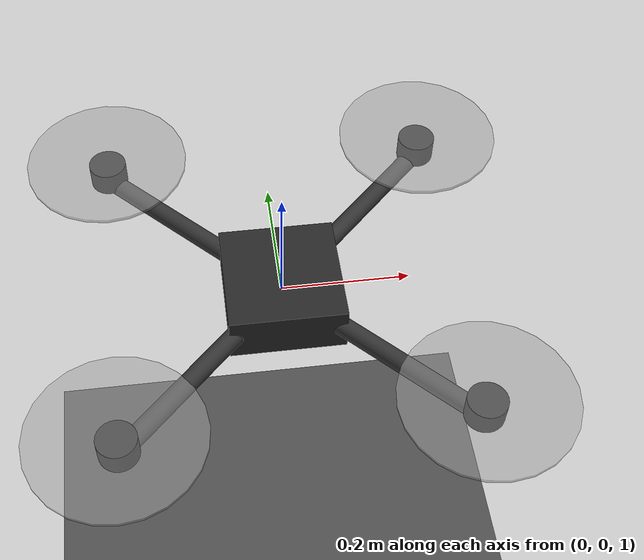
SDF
<?xml version="1.0"?>
<sdf version="1.9">
  <world name="quad_world">
    <plugin filename="gz-sim-physics-system" name="gz::sim::systems::Physics"/>
    <plugin filename="gz-sim-user-commands-system" name="gz::sim::systems::UserCommands"/>
    <plugin filename="gz-sim-scene-broadcaster-system" name="gz::sim::systems::SceneBroadcaster"/>
    <plugin filename="gz-sim-sensors-system" name="gz::sim::systems::Sensors">
      <render_engine>ogre2</render_engine>
    </plugin>

    <light type="directional" name="sun">
      <cast_shadows>true</cast_shadows>
      <pose>0 0 10 0 0 0</pose>
      <diffuse>0.8 0.8 0.8 1</diffuse>
      <direction>-0.5 0.1 -0.9</direction>
    </light>

    <model name="ground_plane">
      <static>true</static>
      <link name="link">
        <collision name="collision">
          <geometry><plane><normal>0 0 1</normal><size>50 50</size></plane></geometry>
        </collision>
        <visual name="visual">
          <geometry><plane><normal>0 0 1</normal><size>50 50</size></plane></geometry>
          <material><ambient>0.3 0.3 0.3 1</ambient></material>
        </visual>
      </link>
    </model>

    <model name="quadrotor">
      <pose>0 0 1 0 0 0</pose>
      <link name="base_link">
        <gravity>false</gravity>  <!-- no flight controller, so we cancel gravity -->
        <inertial>
          <mass>1.5</mass>
          <inertia><ixx>0.03</ixx><iyy>0.03</iyy><izz>0.06</izz>
                    <ixy>0</ixy><ixz>0</ixz><iyz>0</iyz></inertia>
        </inertial>

        <!-- central hub -->
        <visual name="hub_visual">
          <geometry><box><size>0.18 0.18 0.08</size></box></geometry>
          <material><ambient>0.15 0.15 0.15 1</ambient><diffuse>0.15 0.15 0.15 1</diffuse></material>
        </visual>

        <!-- 4 arms, X configuration -->
        <visual name="arm_fl">
          <pose>0.15 0.15 0 0 1.5708 0.7854</pose>
          <geometry><cylinder><radius>0.015</radius><length>0.32</length></cylinder></geometry>
          <material><ambient>0.2 0.2 0.2 1</ambient><diffuse>0.2 0.2 0.2 1</diffuse></material>
        </visual>
        <visual name="arm_fr">
          <pose>0.15 -0.15 0 0 1.5708 -0.7854</pose>
          <geometry><cylinder><radius>0.015</radius><length>0.32</length></cylinder></geometry>
          <material><ambient>0.2 0.2 0.2 1</ambient><diffuse>0.2 0.2 0.2 1</diffuse></material>
        </visual>
        <visual name="arm_bl">
          <pose>-0.15 0.15 0 0 1.5708 -0.7854</pose>
          <geometry><cylinder><radius>0.015</radius><length>0.32</length></cylinder></geometry>
          <material><ambient>0.2 0.2 0.2 1</ambient><diffuse>0.2 0.2 0.2 1</diffuse></material>
        </visual>
        <visual name="arm_br">
          <pose>-0.15 -0.15 0 0 1.5708 0.7854</pose>
          <geometry><cylinder><radius>0.015</radius><length>0.32</length></cylinder></geometry>
          <material><ambient>0.2 0.2 0.2 1</ambient><diffuse>0.2 0.2 0.2 1</diffuse></material>
        </visual>

        <!-- 4 rotor motors (small dark cylinders at arm tips) -->
        <visual name="motor_fl">
          <pose>0.26 0.26 0.02 0 0 0</pose>
          <geometry><cylinder><radius>0.03</radius><length>0.04</length></cylinder></geometry>
          <material><ambient>0.05 0.05 0.05 1</ambient><diffuse>0.05 0.05 0.05 1</diffuse></material>
        </visual>
        <visual name="motor_fr">
          <pose>0.26 -0.26 0.02 0 0 0</pose>
          <geometry><cylinder><radius>0.03</radius><length>0.04</length></cylinder></geometry>
          <material><ambient>0.05 0.05 0.05 1</ambient><diffuse>0.05 0.05 0.05 1</diffuse></material>
        </visual>
        <visual name="motor_bl">
          <pose>-0.26 0.26 0.02 0 0 0</pose>
          <geometry><cylinder><radius>0.03</radius><length>0.04</length></cylinder></geometry>
          <material><ambient>0.05 0.05 0.05 1</ambient><diffuse>0.05 0.05 0.05 1</diffuse></material>
        </visual>
        <visual name="motor_br">
          <pose>-0.26 -0.26 0.02 0 0 0</pose>
          <geometry><cylinder><radius>0.03</radius><length>0.04</length></cylinder></geometry>
          <material><ambient>0.05 0.05 0.05 1</ambient><diffuse>0.05 0.05 0.05 1</diffuse></material>
        </visual>

        <!-- 4 propeller discs (flat, semi-transparent) -->
        <visual name="prop_fl">
          <pose>0.26 0.26 0.045 0 0 0</pose>
          <geometry><cylinder><radius>0.13</radius><length>0.006</length></cylinder></geometry>
          <material><ambient>0.6 0.6 0.6 0.5</ambient><diffuse>0.6 0.6 0.6 0.5</diffuse></material>
        </visual>
        <visual name="prop_fr">
          <pose>0.26 -0.26 0.045 0 0 0</pose>
          <geometry><cylinder><radius>0.13</radius><length>0.006</length></cylinder></geometry>
          <material><ambient>0.6 0.6 0.6 0.5</ambient><diffuse>0.6 0.6 0.6 0.5</diffuse></material>
        </visual>
        <visual name="prop_bl">
          <pose>-0.26 0.26 0.045 0 0 0</pose>
          <geometry><cylinder><radius>0.13</radius><length>0.006</length></cylinder></geometry>
          <material><ambient>0.6 0.6 0.6 0.5</ambient><diffuse>0.6 0.6 0.6 0.5</diffuse></material>
        </visual>
        <visual name="prop_br">
          <pose>-0.26 -0.26 0.045 0 0 0</pose>
          <geometry><cylinder><radius>0.13</radius><length>0.006</length></cylinder></geometry>
          <material><ambient>0.6 0.6 0.6 0.5</ambient><diffuse>0.6 0.6 0.6 0.5</diffuse></material>
        </visual>

        <!-- single collision box, physics doesn't need to match visuals -->
        <collision name="body_collision">
          <geometry><box><size>0.55 0.55 0.15</size></box></geometry>
        </collision>
      </link>

      <plugin filename="gz-sim-velocity-control-system" name="gz::sim::systems::VelocityControl">
        <topic>/model/quadrotor/cmd_vel</topic>
      </plugin>

      <plugin filename="gz-sim-odometry-publisher-system" name="gz::sim::systems::OdometryPublisher">
        <odom_frame>odom</odom_frame>
        <robot_base_frame>base_link</robot_base_frame>
        <odom_topic>/model/quadrotor/odometry</odom_topic>
        <odom_publish_frequency>30</odom_publish_frequency>
        <dimensions>3</dimensions>
      </plugin>
    </model>
  </world>
</sdf>
